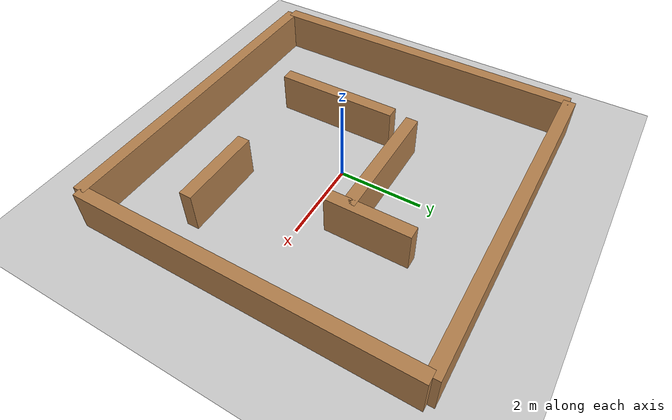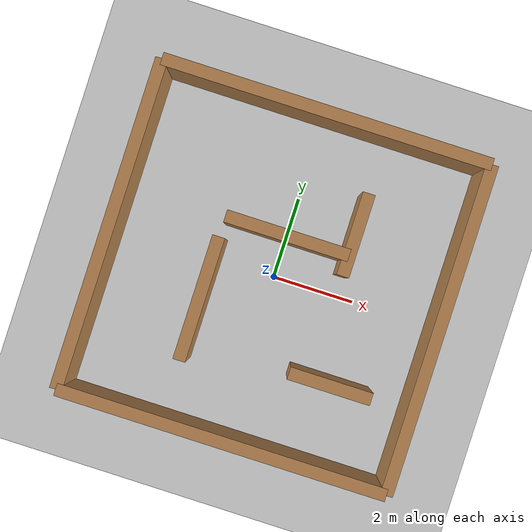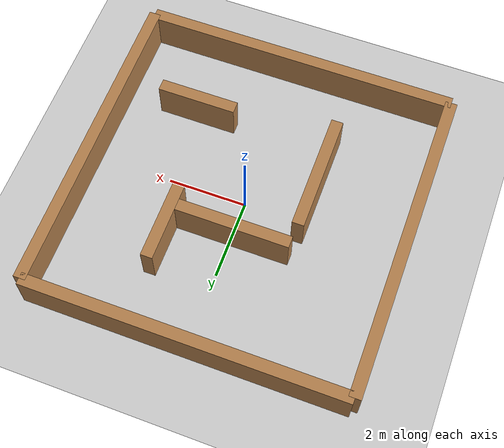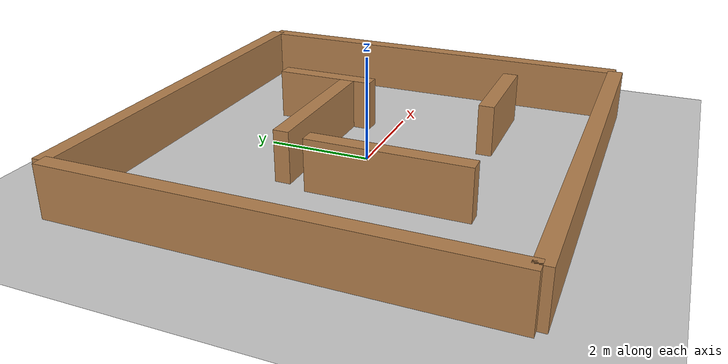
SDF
<?xml version="1.0" ?>
<sdf version="1.6">
<world name="maze_map">

  <!-- Ánh sáng -->
  <include>
    <uri>model://sun</uri>
  </include>

  <!-- Ground -->
  <include>
    <uri>model://ground_plane</uri>
  </include>

  <!-- Maze -->
  <model name="wooden_maze">
    <static>true</static>
    <link name="walls">

      <!-- Hàm tạo tường: visual và collision -->
      <!-- Tường ngoài -->
      <!-- North -->
      <visual name="wall_north_visual">
        <geometry><box><size>8 0.3 1</size></box></geometry>
        <pose>0 4 0.5 0 0 0</pose>
        <material><script><uri>file://media/materials/scripts/gazebo.material</uri><name>Gazebo/Wood</name></script></material>
      </visual>
      <collision name="wall_north_collision">
        <geometry><box><size>8 0.3 1</size></box></geometry>
        <pose>0 4 0.5 0 0 0</pose>
      </collision>

      <!-- South -->
      <visual name="wall_south_visual">
        <geometry><box><size>8 0.3 1</size></box></geometry>
        <pose>0 -4 0.5 0 0 0</pose>
        <material><script><uri>file://media/materials/scripts/gazebo.material</uri><name>Gazebo/Wood</name></script></material>
      </visual>
      <collision name="wall_south_collision">
        <geometry><box><size>8 0.3 1</size></box></geometry>
        <pose>0 -4 0.5 0 0 0</pose>
      </collision>

      <!-- West -->
      <visual name="wall_west_visual">
        <geometry><box><size>0.3 8 1</size></box></geometry>
        <pose>-4 0 0.5 0 0 0</pose>
        <material><script><uri>file://media/materials/scripts/gazebo.material</uri><name>Gazebo/Wood</name></script></material>
      </visual>
      <collision name="wall_west_collision">
        <geometry><box><size>0.3 8 1</size></box></geometry>
        <pose>-4 0 0.5 0 0 0</pose>
      </collision>

      <!-- East -->
      <visual name="wall_east_visual">
        <geometry><box><size>0.3 8 1</size></box></geometry>
        <pose>4 0 0.5 0 0 0</pose>
        <material><script><uri>file://media/materials/scripts/gazebo.material</uri><name>Gazebo/Wood</name></script></material>
      </visual>
      <collision name="wall_east_collision">
        <geometry><box><size>0.3 8 1</size></box></geometry>
        <pose>4 0 0.5 0 0 0</pose>
      </collision>

      <!-- Tường bên trong -->
      <!-- Inner 1 -->
      <visual name="inner_wall_1_visual">
        <geometry><box><size>3 0.3 1</size></box></geometry>
        <pose>0 1 0.5 0 0 0</pose>
        <material><script><uri>file://media/materials/scripts/gazebo.material</uri><name>Gazebo/Wood</name></script></material>
      </visual>
      <collision name="inner_wall_1_collision">
        <geometry><box><size>3 0.3 1</size></box></geometry>
        <pose>0 1 0.5 0 0 0</pose>
      </collision>

      <!-- Inner 2 -->
      <visual name="inner_wall_2_visual">
        <geometry><box><size>0.3 3 1</size></box></geometry>
        <pose>-1.5 -1 0.5 0 0 0</pose>
        <material><script><uri>file://media/materials/scripts/gazebo.material</uri><name>Gazebo/Wood</name></script></material>
      </visual>
      <collision name="inner_wall_2_collision">
        <geometry><box><size>0.3 3 1</size></box></geometry>
        <pose>-1.5 -1 0.5 0 0 0</pose>
      </collision>

      <!-- Inner 3 -->
      <visual name="inner_wall_3_visual">
        <geometry><box><size>2 0.3 1</size></box></geometry>
        <pose>2 -2 0.5 0 0 0</pose>
        <material><script><uri>file://media/materials/scripts/gazebo.material</uri><name>Gazebo/Wood</name></script></material>
      </visual>
      <collision name="inner_wall_3_collision">
        <geometry><box><size>2 0.3 1</size></box></geometry>
        <pose>2 -2 0.5 0 0 0</pose>
      </collision>

      <!-- Inner 4 -->
      <visual name="inner_wall_4_visual">
        <geometry><box><size>0.3 2 1</size></box></geometry>
        <pose>1.5 1.5 0.5 0 0 0</pose>
        <material><script><uri>file://media/materials/scripts/gazebo.material</uri><name>Gazebo/Wood</name></script></material>
      </visual>
      <collision name="inner_wall_4_collision">
        <geometry><box><size>0.3 2 1</size></box></geometry>
        <pose>1.5 1.5 0.5 0 0 0</pose>
      </collision>

    </link>
  </model>
</world>
</sdf>
